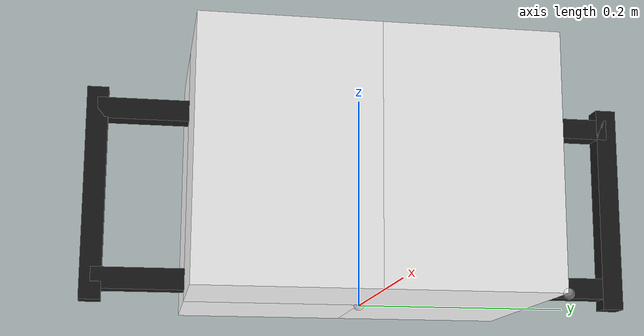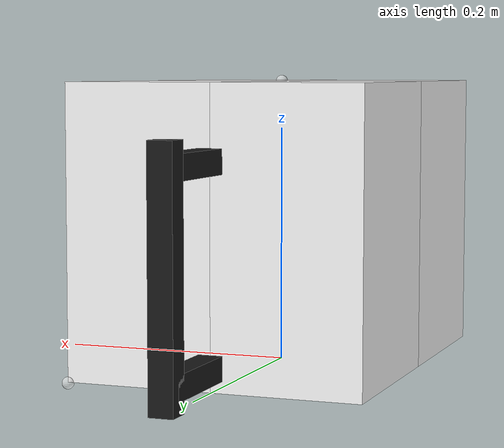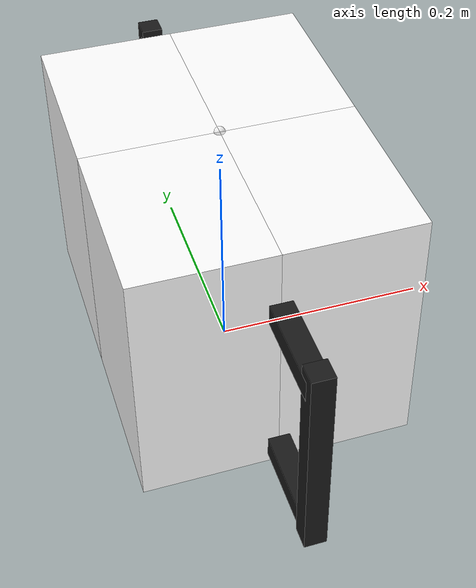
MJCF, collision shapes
<mujoco model="cardbox_a1">
  <default>
    <default class="visual">
      <geom group="1" type="mesh" contype="0" conaffinity="0" density="100"/>
    </default>
    <default class="collision">
      <geom group="0" type="mesh" density="100" solimp="0.95 0.98 0.001" solref="0.004 1" rgba="1 1 1 0.25"/>
    </default>
  </default>
  <asset>
    <texture type="2d" name="T_Cardbox_A1_Albedo" file="textures/T_Cardbox_A1_Albedo.png"/>
    <material name="Cardboard_A" texture="T_Cardbox_A1_Albedo" specular="0.5" shininess="0.25"/>
    <mesh file="meshes/cardbox_a1.obj" name="cardbox_a1"/>
  </asset>
  <worldbody>
    <body>
      <body name="object">
        <geom material="Cardboard_A" mesh="cardbox_a1" class="visual"/>
        <geom type="box" pos="-0.06124296158420828 0.0823374589039666 0.12043633342869287" size="0.11989854814448268 0.061371401217758345 0.0823902606847455" quat="0.5001817280003483 0.5001993434949776 0.49967233690804047 -0.49994640859859846" class="collision"/>
        <geom type="box" pos="-0.06129104205382395 -0.0824430500368552 0.12047857409014195" size="0.11989854814448268 0.061371401217758345 0.0823902606847455" quat="0.5001817280003483 0.5001993434949776 0.49967233690804047 -0.49994640859859846" class="collision"/>
        <geom type="box" pos="0.06149979996431068 0.08230166840300479 0.12052990803923899" size="0.11989854814448268 0.061371401217758345 0.0823902606847455" quat="0.5001817280003483 0.5001993434949776 0.49967233690804047 -0.49994640859859846" class="collision"/>
        <geom type="box" pos="0.06145171949469501 -0.08247884053781701 0.12057214870068808" size="0.11989854814448268 0.061371401217758345 0.0823902606847455" quat="0.5001817280003483 0.5001993434949776 0.49967233690804047 -0.49994640859859846" class="collision"/>
        <geom type="box" pos="0 0.25 0.1" size="0.01 0.01 0.1" class="collision" group="1" rgba="0.1 0.1 0.1 1"/>
        <geom type="box" pos="0 -0.25 0.1" size="0.01 0.01 0.1" class="collision" group="1" rgba="0.1 0.1 0.1 1"/>
        <geom type="box" pos="0 0 0.18" size="0.01 0.25 0.01" class="collision" group="1" rgba="0.1 0.1 0.1 1"/>
        <geom type="box" pos="0 0 0.02" size="0.01 0.25 0.01" class="collision" group="1" rgba="0.1 0.1 0.1 1"/>
      </body>
      <site name="bottom_site" pos="0 0 0.000556" rgba="1 1 1 0.5" size="0.005"/>
      <site name="top_site" pos="0 0 0.240352" rgba="1 1 1 0.5" size="0.005"/>
      <site name="horizontal_radius_site" pos="0.122875 0.164772 0" rgba="1 1 1 0.5" size="0.005"/>
    </body>
  </worldbody>
</mujoco>
